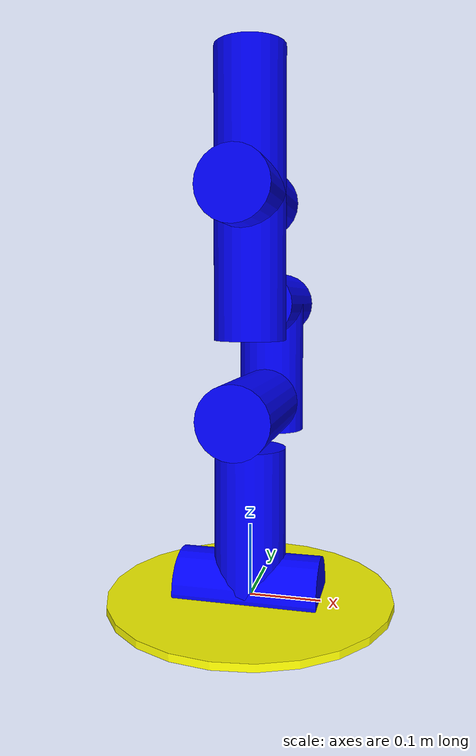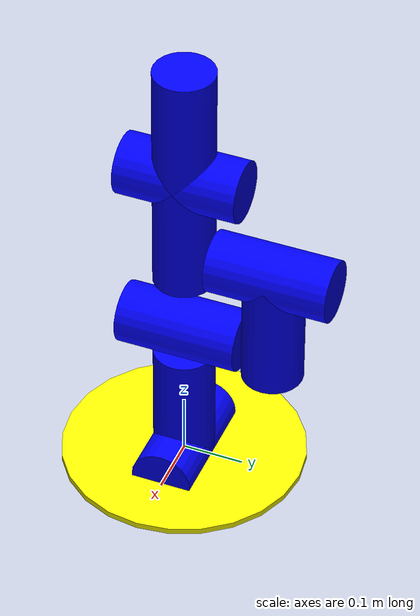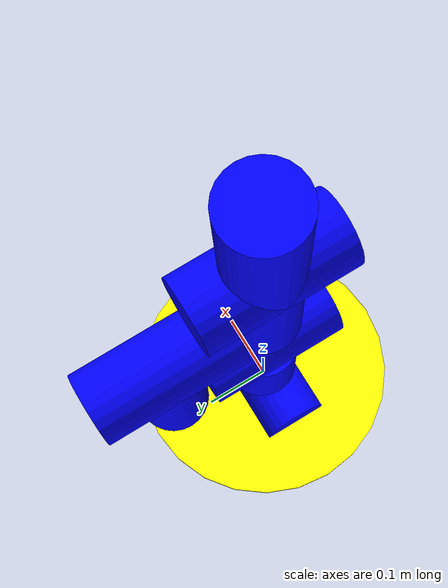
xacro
<?xml version="1.0"?>

<robot name="kukaR800" xmlns:xacro="http://wiki.ros.org/xacro">
    <xacro:include filename="$(find robot_kukalike)/urdf/kuka_light_macro.xacro" />

		<xacro:base_link_macro
			base_link_name="base_link">
		</xacro:base_link_macro>

		<xacro:kuka_joint
			name="slider_joint"
			type="prismatic"
			parent="base_link"
			child="slider">
			<limit effort="300.0" lower="-0.3" upper="0.3" velocity="0.5"/>
			<origin xyz="0 0 0.01" />
			<axis xyz="1 0 0"/>
		</xacro:kuka_joint>
		<xacro:kuka_link name="slider">
			<origin xyz="0 0 0" rpy="0 1.57 0"/>
		</xacro:kuka_link>
		<xacro:kuka_joint
			name="1_joint"
			type="revolute"
			parent="slider"
			child="1_link">
			<limit effort="300" velocity="0.1" lower="-3.14" upper="3.14"/>
			<origin xyz="0 0 0.1" />
			<axis xyz="0 0 1"/>
		</xacro:kuka_joint>

		<xacro:kuka_link name="1_link">
			<origin xyz="0 0 0" rpy="0 0 0.09"/>
		</xacro:kuka_link>

		<xacro:kuka_joint
			name="2_joint"
			type="revolute"
			parent="1_link"
			child="2_link">
			<origin xyz="0 0 0.15" />
			<limit effort="300" velocity="0.1" lower="-3.14" upper="3.14"/>
			<axis xyz="0 1 0"/>
		</xacro:kuka_joint>

		<xacro:kuka_link name="2_link">
			<origin xyz="0 0 0" rpy="-1.57 0 0.0"/>
		</xacro:kuka_link>

		<xacro:kuka_joint
			name="3_joint"
			type="revolute"
			parent="2_link"
			child="3_link">
			<origin xyz="0 0.15  0" />
			<limit effort="300" velocity="0.1" lower="-3.14" upper="3.14"/>
			<axis xyz="0 0 1"/>
		</xacro:kuka_joint>

		<xacro:kuka_link name="3_link">

			<origin xyz="0 0 0.05" rpy="0 0 0"/>
		</xacro:kuka_link>

		<xacro:kuka_joint
			name="4_joint"
			type="revolute"
			parent="3_link"
			child="4_link">
			<origin xyz="0 0 0.15 " />
			<limit effort="300" velocity="0.1" lower="-3.14" upper="3.14"/>
			<axis xyz="0 -1 0"/>
		</xacro:kuka_joint>

		<xacro:kuka_link name="4_link">

			<origin xyz="0 0 0" rpy="1.57 0 0"/>
		</xacro:kuka_link>
		<xacro:kuka_joint
			name="5_joint"
			type="revolute"
			parent="4_link"
			child="5_link">
			<origin xyz="0 -0.15 0 " />
			<limit effort="300" velocity="0.1" lower="-3.14" upper="3.14"/>
			<axis xyz="0 0 1"/>
		</xacro:kuka_joint>

		<xacro:kuka_link name="5_link">

			<origin xyz="0 0 0.05" rpy="0 0 0"/>
		</xacro:kuka_link>
		<xacro:kuka_joint
			name="6_joint"
			type="revolute"
			parent="5_link"
			child="6_link">
			<origin xyz="0 0 0.15 " />
			<limit effort="300" velocity="0.1" lower="-3.14" upper="3.14"/>
			<axis xyz="0 1 0"/>
		</xacro:kuka_joint>

		<xacro:kuka_link name="6_link">

			<origin xyz="0 0 0" rpy="1.57 0 0"/>
		</xacro:kuka_link>
		<xacro:kuka_joint
			name="wrist"
			type="revolute"
			parent="6_link"
			child="end_effector">
			<origin xyz="0 0 0 " />
			<limit effort="300" velocity="0.1" lower="-3.14" upper="3.14"/>
			<axis xyz="0 0 1"/>
		</xacro:kuka_joint>

		<xacro:kuka_link name="end_effector">

			<origin xyz="0 0 0.1" rpy="0 0 0"/>
		</xacro:kuka_link>
</robot>

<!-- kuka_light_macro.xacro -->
<robot name="kuka_light_macro" xmlns:xacro="http://www.ros.org/wiki/xacro">
	<xacro:macro name="base_link_macro" params="base_link_name">
		<link name="${base_link_name}">
			<visual>
				<geometry>
					<cylinder length="0.01" radius="0.2"/>
				</geometry>
				<origin rpy="0 0 0" xyz="0 0 0"/>
					<material name="yellow">
						<color rgba="1 1 0 1"/>
					</material>
			</visual>
			<collision>
				<geometry>
					<cylinder length="0.03" radius="0.2"/>
				</geometry>
				<origin rpy="0 0 0" xyz="0 0 0"/>
			</collision>
			<inertial>
				<mass value="1"/>
					<inertia ixx="1.0" ixy="0.0" ixz="0.0" iyy="1.0" iyz="0.0" izz="1.0"/>
					</inertial>
		</link>
	</xacro:macro>

	<xacro:macro name="kuka_joint" params="name type parent child *limit *origin *axis">
		<joint name="${name}" type="${type}">
			<parent link="${parent}" />
			<child link="${child}" />
			<xacro:insert_block name="limit" />
	    		<xacro:insert_block name="origin" />
			<xacro:insert_block name="axis" />

	    		<dynamics damping="50" friction="1"/>
		</joint>
	</xacro:macro>

	<xacro:macro name="kuka_link" params="name  *origin">
		<link name="${name}">
			<visual>
				<geometry>
				<cylinder length="0.20" radius="0.05"/>
				</geometry>
				<xacro:insert_block name="origin" />
		    <material name="red">
		      <color rgba="0 0 1 1"/>
		    </material>
		  </visual>
		  <collision>
				<geometry>
				<cylinder length="0.2" radius="0.05"/>
				</geometry>
				<xacro:insert_block name="origin" />
			</collision>
			<inertial>
				<mass value="1"/>
					<inertia ixx="1.0" ixy="0.0" ixz="0.0" iyy="1.0" iyz="0.0" izz="1.0"/>
		  </inertial>
	  </link>
	</xacro:macro>

</robot>
